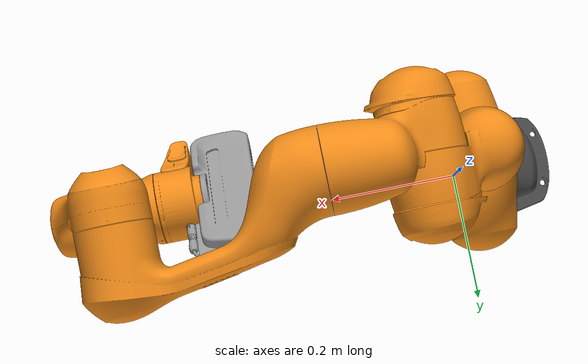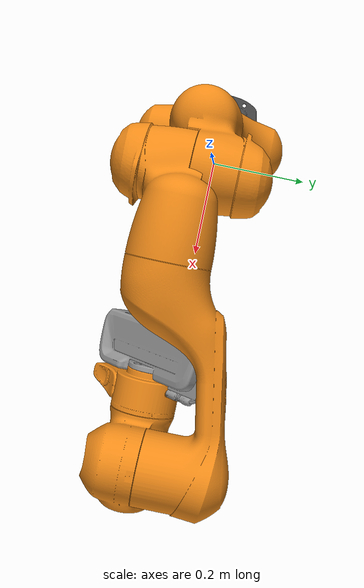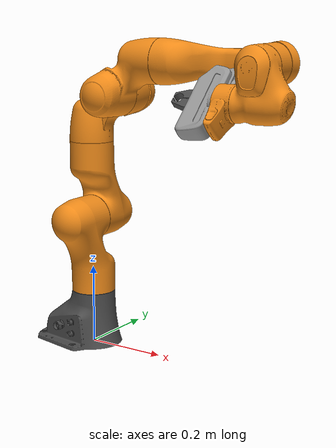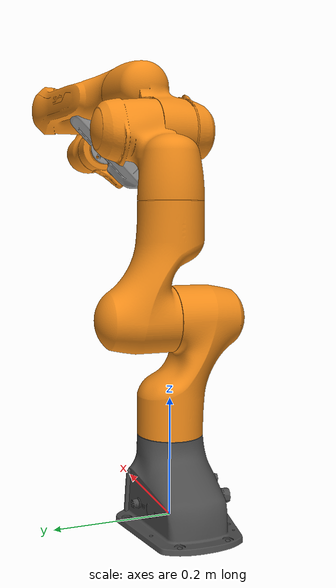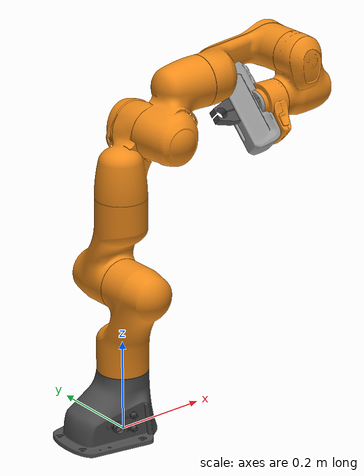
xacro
<?xml version="1.0"?>
<robot name="panda" xmlns:xacro="http://www.ros.org/wiki/xacro">

    <xacro:arg name="end_effector" default="true" />
    <xacro:arg name="gazebo" default="true" />

    <xacro:include filename="$(find robot_description)/urdf/visual_material.xacro" />

    <xacro:include filename="$(find robot_description)/urdf/panda_arm.xacro">
        <xacro:arg name="gazebo" value="$(arg gazebo)" />
    </xacro:include>

    <xacro:if value="$(arg end_effector)">
        <xacro:include filename="$(find robot_description)/urdf/panda_end_effector.xacro">
            <xacro:arg name="gazebo" value="$(arg gazebo)" />
        </xacro:include>
    </xacro:if>

    <xacro:include filename="$(find robot_description)/urdf/panda_hw_interface.xacro">
        <xacro:arg name="end_effector" value="$(arg end_effector)" />
    </xacro:include>

</robot>

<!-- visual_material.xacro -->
<robot name="material" xmlns:xacro="http://www.ros.org/wiki/xacro">

    <material name="blue">
        <color rgba="0 0 0.8 1"/>
    </material>

    <material name="black">
        <color rgba="0 0 0 1"/>
    </material>

    <material name="white">
        <color rgba="1 1 1 1"/>
    </material>

    <material name="green">
        <color rgba="0 1 0 1"/>
    </material>

    <material name="darkgreen">
        <color rgba="0 0.4 0 1"/>
    </material>

    <material name="darkgray">
        <color rgba="0.2 0.2 0.2 1"/>
    </material>

    <material name="gray">
        <color rgba="0.5 0.5 0.5 1"/>
    </material>

</robot>

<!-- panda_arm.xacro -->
<robot name="panda" xmlns:xacro="http://www.ros.org/wiki/xacro">

    <xacro:arg name="gazebo" default="true" />

    <link name="world" />

    <!-- Fix To World -->
    <joint name="panda_link0_to_world" type="fixed">
        <parent link="world" />
        <child link="panda_link0" />
    </joint>

    <!-- Arm Links -->
    <link name="panda_link0">
        <visual name="panda_link0_visual">
            <geometry>
                <mesh filename="package://robot_description/meshes/visual/link0.dae" />
            </geometry>
        </visual>
        <collision name="panda_link0_collision">
            <geometry>
                <mesh filename="package://robot_description/meshes/collision/link0.stl" />
            </geometry>
        </collision>
        <xacro:if value="$(arg gazebo)">
            <inertial>
                <origin xyz="-0.025566 -2.87883e-05 0.057332" rpy="0 0 0" />
                <mass value="2.814271300104062" />
                <inertia
                    ixx="0.0075390636364814695"
                    iyy="0.010508017427382959"
                    izz="0.009864933638708275"
                    ixy="-1.5053124574783335e-05"
                    ixz="-0.0012144328835738973"
                    iyz="1.0434803501032979e-05" />
            </inertial>
        </xacro:if>
    </link>

    <link name="panda_link1">
        <visual name="panda_link1_visual">
            <geometry>
                <mesh filename="package://robot_description/meshes/visual/link1.dae" />
            </geometry>
        </visual>
        <collision name="panda_link1_collision">
            <geometry>
                <mesh filename="package://robot_description/meshes/collision/link1.stl" />
            </geometry>
        </collision>
        <xacro:if value="$(arg gazebo)">
            <inertial>
                <origin xyz="-3.72212e-09 -0.0324958 -0.0675818" rpy="0 0 0" />
                <mass value="2.6433170427227215" />
                <inertia
                    ixx="0.017405076982879724"
                    iyy="0.015352077935781732"
                    izz="0.005987891663073857"
                    ixy="-8.687986369621078e-09"
                    ixz="-1.6277819062920423e-08"
                    iyz="0.004510855959102245" />
            </inertial>
        </xacro:if>
    </link>

    <link name="panda_link2">
        <visual name="panda_link2_visual">
            <geometry>
                <mesh filename="package://robot_description/meshes/visual/link2.dae" />
            </geometry>
        </visual>
        <collision name="panda_link2_collision">
            <geometry>
                <mesh filename="package://robot_description/meshes/collision/link2.stl" />
            </geometry>
        </collision>
        <xacro:if value="$(arg gazebo)">
            <inertial>
                <origin xyz="3.17833e-07 -0.06861 0.0322285" rpy="0 0 0" />
                <mass value="2.6652755331661186" />
                <inertia
                    ixx="0.01778694005635383"
                    iyy="0.006044133867952844"
                    izz="0.01571095500455695"
                    ixy="8.70635625879119e-08"
                    ixz="3.752072058394008e-08"
                    iyz="-0.004599490295490376" />
            </inertial>
        </xacro:if>
    </link>

    <link name="panda_link3">
        <visual name="panda_link3_visual">
            <geometry>
                <mesh filename="package://robot_description/meshes/visual/link3.dae" />
            </geometry>
        </visual>
        <collision name="panda_link3_collision">
            <geometry>
                <mesh filename="package://robot_description/meshes/collision/link3.stl" />
            </geometry>
        </collision>
        <xacro:if value="$(arg gazebo)">
            <inertial>
                <origin xyz="0.0469893 0.0316374 -0.031704" rpy="0 0 0" />
                <mass value="2.3293714829045733" />
                <inertia
                    ixx="0.0075496764161139766"
                    iyy="0.009680676080191398"
                    izz="0.007944557422008086"
                    ixy="-0.0024320464513492225"
                    ixz="-0.003250815048103007"
                    iyz="-0.0021316282421730694" />
            </inertial>
        </xacro:if>
    </link>

    <link name="panda_link4">
        <visual name="panda_link4_visual">
            <geometry>
                <mesh filename="package://robot_description/meshes/visual/link4.dae" />
            </geometry>
        </visual>
        <collision name="panda_link4_collision">
            <geometry>
                <mesh filename="package://robot_description/meshes/collision/link4.stl" />
            </geometry>
        </collision>
        <xacro:if value="$(arg gazebo)">
            <inertial>
                <origin xyz="-0.0360505 0.0337069 0.0319019" rpy="0 0 0" />
                <mass value="2.3104763646281508" />
                <inertia
                    ixx="0.007764568814864828"
                    iyy="0.008015776929980149"
                    izz="0.009955882308071066"
                    ixy="0.003371475204045935"
                    ixz="-0.002343621113168248"
                    iyz="0.0022917526161470624" />
            </inertial>
        </xacro:if>
    </link>

    <link name="panda_link5">
        <visual name="panda_link5_visual">
            <geometry>
                <mesh filename="package://robot_description/meshes/visual/link5.dae" />
            </geometry>
        </visual>
        <collision name="panda_link5_collision">
            <geometry>
                <mesh filename="package://robot_description/meshes/collision/link5.stl" />
            </geometry>
        </collision>
        <xacro:if value="$(arg gazebo)">
            <inertial>
                <origin xyz="-6.12525e-06 0.0610427 -0.104176" rpy="0 0 0" />
                <mass value="2.6226426154892004" />
                <inertia
                    ixx="0.029070538014399377"
                    iyy="0.027638529986528795"
                    izz="0.004251111234400737"
                    ixy="6.208738268725568e-07"
                    ixz="-1.0059151925023392e-05"
                    iyz="-0.007424306477850814" />
            </inertial>
        </xacro:if>
    </link>

    <link name="panda_link6">
        <visual name="panda_link6_visual">
            <geometry>
                <mesh filename="package://robot_description/meshes/visual/link6.dae" />
            </geometry>
        </visual>
        <collision name="panda_link6_collision">
            <geometry>
                <mesh filename="package://robot_description/meshes/collision/link6.stl" />
            </geometry>
        </collision>
        <xacro:if value="$(arg gazebo)">
            <inertial>
                <origin value="0.051051 0.00910797 0.0106343" rpy="0 0 0" />
                <mass value="1.5025804886626795" />
                <inertia
                    ixx="0.002940555801469018"
                    iyy="0.00392105201248677"
                    izz="0.0054115603870960195"
                    ixy="-0.00042391108351381507"
                    ixz="0.000610007735338717"
                    iyz="0.00012647545430836214" />
            </inertial>
        </xacro:if>
    </link>

    <link name="panda_link7">
        <visual name="panda_link7_visual">
            <geometry>
                <mesh filename="package://robot_description/meshes/visual/link7.dae" />
            </geometry>
        </visual>
        <collision name="panda_link7_collision">
            <geometry>
                <mesh filename="package://robot_description/meshes/collision/link7.stl" />
            </geometry>
        </collision>
        <xacro:if value="$(arg gazebo)">
            <inertial>
                <origin xyz="0.0109695 0.0107965 0.0650412" rpy="0 0 0" />
                <mass value="0.5237668134788256" />
                <inertia
                    ixx="0.0008621467959726535"
                    iyy="0.0008613100184801048"
                    izz="0.0006961139396618219"
                    ixy="-0.00011871071570425467"
                    ixz="3.866602604509339e-05"
                    iyz="-9.057841649422724e-05" />
            </inertial>
        </xacro:if>
    </link>

    <!-- Arm Joints -->
    <joint name="panda_joint1" type="revolute">
        <origin xyz="0 0 0.333" rpy="0 0 0" />
        <parent link="panda_link0" />
        <child link="panda_link1" />
        <axis xyz="0 0 1" />
        <limit effort="87" lower="-2.897246558310587" upper="2.897246558310587" velocity="2.617993877991494" />
        <xacro:if value="$(arg gazebo)">
            <dynamics damping="21.75" friction="3.48" />
        </xacro:if>
    </joint>

    <joint name="panda_joint2" type="revolute">
        <origin xyz="0 0 0" rpy="-1.570796326794897 0 0" />
        <parent link="panda_link1" />
        <child link="panda_link2" />
        <axis xyz="0 0 1" />
        <limit effort="87" lower="-1.762782544514273" upper="1.762782544514273" velocity="2.617993877991494" />
        <xacro:if value="$(arg gazebo)">
            <dynamics damping="21.75" friction="3.48" />
        </xacro:if>
    </joint>

    <joint name="panda_joint3" type="revolute">
        <origin xyz="0 -0.316 0" rpy="1.570796326794897 0 0" />
        <parent link="panda_link2" />
        <child link="panda_link3" />
        <axis xyz="0 0 1" />
        <limit effort="87" lower="-2.897246558310587" upper="2.897246558310587" velocity="2.617993877991494" />
        <xacro:if value="$(arg gazebo)">
            <dynamics damping="21.75" friction="3.48" />
        </xacro:if>
    </joint>

    <joint name="panda_joint4" type="revolute">
        <origin xyz="0.0825 0 0" rpy="1.570796326794897 0 0" />
        <parent link="panda_link3" />
        <child link="panda_link4" />
        <axis xyz="0 0 1" />
        <limit effort="87" lower="-3.07177948351002" upper="-0.06981317007977318" velocity="2.617993877991494" />
        <xacro:if value="$(arg gazebo)">
            <dynamics damping="21.75" friction="3.48" />
        </xacro:if>
    </joint>

    <joint name="panda_joint5" type="revolute">
        <origin xyz="-0.0825 0.384 0" rpy="-1.570796326794897 0 0" />
        <parent link="panda_link4" />
        <child link="panda_link5" />
        <axis xyz="0 0 1" />
        <limit effort="12" lower="-2.897246558310587" upper="2.897246558310587" velocity="3.141592653589793" />
        <xacro:if value="$(arg gazebo)">
            <dynamics damping="3.0" friction="0.48" />
        </xacro:if>
    </joint>

    <joint name="panda_joint6" type="revolute">
        <origin xyz="0 0 0" rpy="1.570796326794897 0 0" />
        <parent link="panda_link5" />
        <child link="panda_link6" />
        <axis xyz="0 0 1" />
        <limit effort="12" lower="-0.0174532925199433" upper="3.752457891787809" velocity="3.141592653589793" />
        <xacro:if value="$(arg gazebo)">
            <dynamics damping="3.0" friction="0.48" />
        </xacro:if>
    </joint>

    <joint name="panda_joint7" type="revolute">
        <origin xyz="0.088 0 0" rpy="1.570796326794897 0 0" />
        <parent link="panda_link6" />
        <child link="panda_link7" />
        <axis xyz="0 0 1" />
        <limit effort="12" lower="-2.897246558310587" upper="2.897246558310587" velocity="3.141592653589793" />
        <xacro:if value="$(arg gazebo)">
            <dynamics damping="3.0" friction="0.48" />
        </xacro:if>
    </joint>

    <!-- Gazebo property -->
    <xacro:if value="$(arg gazebo)">
        <gazebo reference="panda_link0">
            <mu1>1.05</mu1>
            <mu2>1.05</mu2>
            <material>Gazebo/DarkGrey</material>
        </gazebo>

        <gazebo reference="panda_link1">
            <mu1>1.05</mu1>
            <mu2>1.05</mu2>
            <material>Gazebo/Orange</material>
        </gazebo>

        <gazebo reference="panda_link2">
            <mu1>1.05</mu1>
            <mu2>1.05</mu2>
            <material>Gazebo/Orange</material>
        </gazebo>

        <gazebo reference="panda_link3">
            <mu1>1.05</mu1>
            <mu2>1.05</mu2>
            <material>Gazebo/Orange</material>
        </gazebo>

        <gazebo reference="panda_link4">
            <mu1>1.05</mu1>
            <mu2>1.05</mu2>
            <material>Gazebo/Orange</material>
        </gazebo>

        <gazebo reference="panda_link5">
            <mu1>1.05</mu1>
            <mu2>1.05</mu2>
            <material>Gazebo/Orange</material>
        </gazebo>

        <gazebo reference="panda_link6">
            <mu1>1.05</mu1>
            <mu2>1.05</mu2>
            <material>Gazebo/Orange</material>
        </gazebo>

        <gazebo reference="panda_link7">
            <mu1>1.05</mu1>
            <mu2>1.05</mu2>
            <material>Gazebo/Orange</material>
        </gazebo>
    </xacro:if>

</robot>

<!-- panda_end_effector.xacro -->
<robot name="end_effector" xmlns:xacro="http://www.ros.org/wiki/xacro">

    <xacro:arg name="gazebo" default="true" />

    <!-- Arm-Hand Fixed Joint -->
    <joint name="panda_hand_joint" type="fixed">
        <origin xyz="0 0 0.107" rpy="0 0 -0.7853981633974483" />
        <parent link="panda_link7" />
        <child link="panda_hand" />
    </joint>

    <!-- Hand Links -->
    <link name="panda_hand">
        <visual name="panda_hand_visual">
            <origin xyz="0 0 0" rpy="0 0 0" />
            <geometry>
                <mesh filename="package://robot_description/meshes/visual/hand.dae" />
            </geometry>
        </visual>
        <collision name="panda_hand_collision">
            <origin xyz="0 0 0" rpy="0 0 0" />
            <geometry>
                <mesh filename="package://robot_description/meshes/collision/hand.stl" />
            </geometry>
        </collision>
        <xacro:if value="$(arg gazebo)">
            <inertial>
                <origin xyz="-6.7624e-06 0.00152435 0.0275912" rpy="0 0 0" />
                <mass value="0.14060765127978503" />
                <inertia
                    ixx="0.0005365450414352072"
                    iyy="7.70511954783727e-05"
                    izz="0.0004938176882694914"
                    ixy="1.7911952957732454e-08"
                    ixz="-2.320071910601251e-08"
                    iyz="4.681149945315967e-08" />
            </inertial>
        </xacro:if>
    </link>

    <link name="panda_leftfinger">
        <visual name="panda_leftfinger_visual">
            <geometry>
                <mesh filename="package://robot_description/meshes/visual/finger.dae" />
            </geometry>
        </visual>
        <collision name="panda_leftfinger_collision">
            <geometry>
                <mesh filename="package://robot_description/meshes/collision/finger.stl" />
            </geometry>
        </collision>
        <xacro:if value="$(arg gazebo)">
            <inertial>
                <origin xyz="-6.2561e-06 0.00227781 -0.0277116" rpy="0 0 0" />
                <mass value="0.2238453537819424" />
                <inertia
                    ixx="6.74804167363695e-05"
                    iyy="6.627189221641395e-05"
                    izz="1.550396267804825e-05"
                    ixy="-4.1027443646025676e-09"
                    ixz="1.8693673970152995e-08"
                    iyz="1.1967548474390802e-05" />
            </inertial>
        </xacro:if>
    </link>

    <link name="panda_rightfinger">
        <visual name="panda_rightfinger_visual">
            <origin xyz="0 0 0" rpy="0 0 3.141592653589793" />
            <geometry>
                <mesh filename="package://robot_description/meshes/visual/finger.dae" />
            </geometry>
        </visual>
        <collision name="panda_rightfinger_collision">
            <origin xyz="0 0 0" rpy="0 0 3.141592653589793" />
            <geometry>
                <mesh filename="package://robot_description/meshes/collision/finger.stl" />
            </geometry>
        </collision>
        <xacro:if value="$(arg gazebo)">
            <inertial>
                <origin xyz="-6.2561e-06 0.00227781 -0.0277116" rpy="0 0 3.141592653589793" />
                <mass value="0.2238453537819424" />
                <inertia
                    ixx="6.74804167363695e-05"
                    iyy="6.627189221641395e-05"
                    izz="1.550396267804825e-05"
                    ixy="-4.1027443646025676e-09"
                    ixz="1.8693673970152995e-08"
                    iyz="1.1967548474390802e-05" />
            </inertial>
        </xacro:if>
    </link>

    <!-- Finger Joints -->
    <joint name="panda_finger_joint1" type="prismatic">
        <origin xyz="0 0 0.0584" rpy="0 0 0" />
        <parent link="panda_hand" />
        <child link="panda_leftfinger" />
        <axis xyz="0 1 0" />
        <limit effort="20" lower="0.0" upper="0.04" velocity="0.2" />
        <xacro:if value="$(arg gazebo)">
            <dynamics damping="10" friction="0.5" />
        </xacro:if>
    </joint>

    <joint name="panda_finger_joint2" type="prismatic">
        <origin xyz="0 0 0.0584" rpy="0 0 0" />
        <parent link="panda_hand" />
        <child link="panda_rightfinger" />
        <axis xyz="0 -1 0" />
        <limit effort="20" lower="0.0" upper="0.04" velocity="0.2" />
        <xacro:if value="$(arg gazebo)">
            <dynamics damping="10" friction="0.5" />
        </xacro:if>
    </joint>

    <!-- End-effector -->
    <link name="panda_link8" />

    <joint name="end_effector_frame_fixed_joint" type="fixed">
        <origin xyz="0 0 0.103" rpy="0 0 0" />
        <parent link="panda_hand" />
        <child link="panda_link8" />
    </joint>

    <!-- Gazebo property -->
    <xacro:if value="$(arg gazebo)">
        <gazebo reference="panda_hand">
            <mu1>1.05</mu1>
            <mu2>1.05</mu2>
            <material>Gazebo/Grey</material>
        </gazebo>

        <gazebo reference="panda_leftfinger">
            <mu1>1.05</mu1>
            <mu2>1.05</mu2>
            <material>Gazebo/DarkGrey</material>
        </gazebo>

        <gazebo reference="panda_rightfinger">
            <mu1>1.05</mu1>
            <mu2>1.05</mu2>
            <material>Gazebo/DarkGrey</material>
        </gazebo>
    </xacro:if>

</robot>
